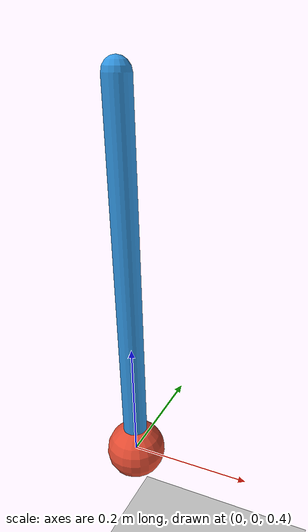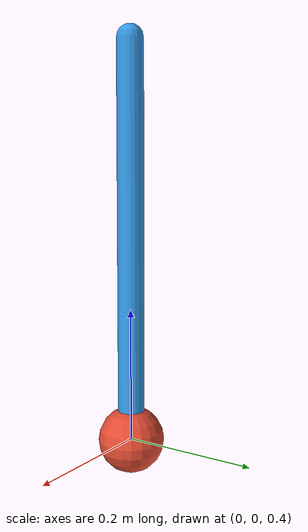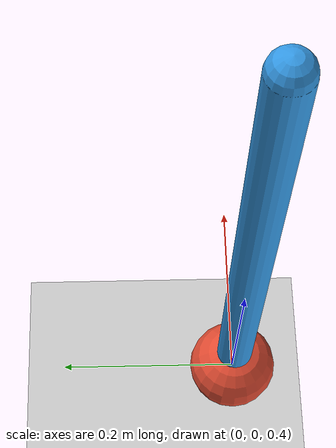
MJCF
<mujoco model="pendulum">
  <option gravity="0 0 -9.81" timestep="0.002"/>

  <worldbody>
    <light pos="0 0 3" dir="0 0 -1"/>
    <geom name="floor" type="plane" size="1 1 0.1" rgba="0.8 0.8 0.8 1"/>

    <body name="pole" pos="0 0 1">
      <joint name="hinge" type="hinge" axis="0 1 0" damping="0.1"/>
      <geom name="rod" type="capsule" fromto="0 0 0  0 0 -0.6" size="0.02" rgba="0.2 0.6 0.9 1"/>
      <body name="bob" pos="0 0 -0.6">
        <geom name="ball" type="sphere" size="0.05" rgba="0.9 0.3 0.2 1" mass="1"/>
      </body>
    </body>
  </worldbody>

  <actuator>
    <motor name="torque" joint="hinge" gear="1" ctrllimited="true" ctrlrange="-2 2"/>
  </actuator>
</mujoco>
